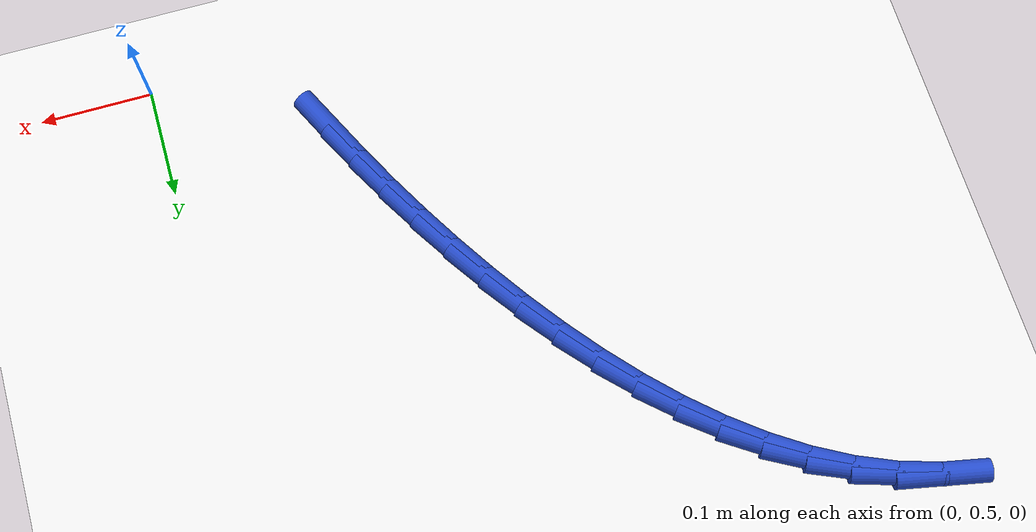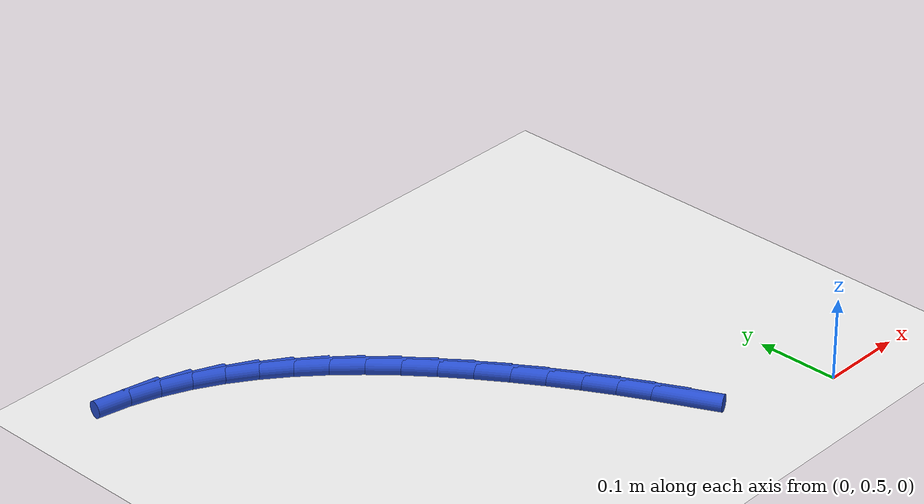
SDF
<sdf version="1.6">
 <world name="default">
  <model name="ground_plane">
   <static>1</static>
   <link name="link">
    <collision name="collision">
     <geometry><plane><normal>0 0 1</normal><size>100 100</size></plane></geometry>
     <surface><friction><ode><mu>100</mu><mu2>50</mu2></ode></friction></surface>
    </collision>
    <visual name="visual">
     <cast_shadows>0</cast_shadows>
     <geometry><plane><normal>0 0 1</normal><size>100 100</size></plane></geometry>
     <material>
      <script><uri>file://media/materials/scripts/gazebo.material</uri><name>Gazebo/WhiteGlow</name></script>
     </material>
    </visual>
   </link>
  </model>
  <model name="line">
   <link name="link_16">
    <pose>-0.14679261433450552 0.5823747199777852 0.01 0 1.57 -1.1213203472348447</pose>
    <collision name="collision">
     <geometry><cylinder><radius>0.01</radius><length>0.08</length></cylinder></geometry>
    </collision>
    <visual name="visual">
     <material>
      <script><name>Gazebo/Blue</name><uri>file://media/materials/scripts/gazebo.material</uri></script>
     </material>
     <geometry><cylinder><radius>0.01</radius><length>0.08</length></cylinder></geometry>
    </visual>
   </link>
   <link name="link_17">
    <pose>-0.1633418557994682 0.6166801408496633 0.01 0 1.57 -1.0940232627694966</pose>
    <collision name="collision">
     <geometry><cylinder><radius>0.01</radius><length>0.08</length></cylinder></geometry>
    </collision>
    <visual name="visual">
     <material>
      <script><name>Gazebo/Blue</name><uri>file://media/materials/scripts/gazebo.material</uri></script>
     </material>
     <geometry><cylinder><radius>0.01</radius><length>0.08</length></cylinder></geometry>
    </visual>
   </link>
   <link name="link_18">
    <pose>-0.18094752649211251 0.6507655618185675 0.01 0 1.57 -1.0660680508618456</pose>
    <collision name="collision">
     <geometry><cylinder><radius>0.01</radius><length>0.08</length></cylinder></geometry>
    </collision>
    <visual name="visual">
     <material>
      <script><name>Gazebo/Blue</name><uri>file://media/materials/scripts/gazebo.material</uri></script>
     </material>
     <geometry><cylinder><radius>0.01</radius><length>0.08</length></cylinder></geometry>
    </visual>
   </link>
   <link name="link_19">
    <pose>-0.19966048208232734 0.6846377488937464 0.01 0 1.57 -1.0375788745526946</pose>
    <collision name="collision">
     <geometry><cylinder><radius>0.01</radius><length>0.08</length></cylinder></geometry>
    </collision>
    <visual name="visual">
     <material>
      <script><name>Gazebo/Blue</name><uri>file://media/materials/scripts/gazebo.material</uri></script>
     </material>
     <geometry><cylinder><radius>0.01</radius><length>0.08</length></cylinder></geometry>
    </visual>
   </link>
   <link name="link_20">
    <pose>-0.21953157824000144 0.7183034680844478 0.01 0 1.57 -1.0085281038988079</pose>
    <collision name="collision">
     <geometry><cylinder><radius>0.01</radius><length>0.08</length></cylinder></geometry>
    </collision>
    <visual name="visual">
     <material>
      <script><name>Gazebo/Blue</name><uri>file://media/materials/scripts/gazebo.material</uri></script>
     </material>
     <geometry><cylinder><radius>0.01</radius><length>0.08</length></cylinder></geometry>
    </visual>
   </link>
   <link name="link_21">
    <pose>-0.2406095187670032 0.7517544728539155 0.01 0 1.57 -0.9769376198959406</pose>
    <collision name="collision">
     <geometry><cylinder><radius>0.01</radius><length>0.08</length></cylinder></geometry>
    </collision>
    <visual name="visual">
     <material>
      <script><name>Gazebo/Blue</name><uri>file://media/materials/scripts/gazebo.material</uri></script>
     </material>
     <geometry><cylinder><radius>0.01</radius><length>0.08</length></cylinder></geometry>
    </visual>
   </link>
   <link name="link_22">
    <pose>-0.26291586237252823 0.7847931384374061 0.01 0 1.57 -0.9410390834616802</pose>
    <collision name="collision">
     <geometry><cylinder><radius>0.01</radius><length>0.08</length></cylinder></geometry>
    </collision>
    <visual name="visual">
     <material>
      <script><name>Gazebo/Blue</name><uri>file://media/materials/scripts/gazebo.material</uri></script>
     </material>
     <geometry><cylinder><radius>0.01</radius><length>0.08</length></cylinder></geometry>
    </visual>
   </link>
   <link name="link_23">
    <pose>-0.2864535874889766 0.8170922144344327 0.01 0 1.57 -0.9002093344930429</pose>
    <collision name="collision">
     <geometry><cylinder><radius>0.01</radius><length>0.08</length></cylinder></geometry>
    </collision>
    <visual name="visual">
     <material>
      <script><name>Gazebo/Blue</name><uri>file://media/materials/scripts/gazebo.material</uri></script>
     </material>
     <geometry><cylinder><radius>0.01</radius><length>0.08</length></cylinder></geometry>
    </visual>
   </link>
   <link name="link_24">
    <pose>-0.31122531119113567 0.8483219294266147 0.01 0 1.57 -0.8537427876005834</pose>
    <collision name="collision">
     <geometry><cylinder><radius>0.01</radius><length>0.08</length></cylinder></geometry>
    </collision>
    <visual name="visual">
     <material>
      <script><name>Gazebo/Blue</name><uri>file://media/materials/scripts/gazebo.material</uri></script>
     </material>
     <geometry><cylinder><radius>0.01</radius><length>0.08</length></cylinder></geometry>
    </visual>
   </link>
   <link name="link_25">
    <pose>-0.337233650553793 0.8781525119955721 0.01 0 1.57 -0.8008281616777726</pose>
    <collision name="collision">
     <geometry><cylinder><radius>0.01</radius><length>0.08</length></cylinder></geometry>
    </collision>
    <visual name="visual">
     <material>
      <script><name>Gazebo/Blue</name><uri>file://media/materials/scripts/gazebo.material</uri></script>
     </material>
     <geometry><cylinder><radius>0.01</radius><length>0.08</length></cylinder></geometry>
    </visual>
   </link>
   <link name="link_26">
    <pose>-0.3644812226517359 0.9062541907229245 0.01 0 1.57 -0.7405665021716514</pose>
    <collision name="collision">
     <geometry><cylinder><radius>0.01</radius><length>0.08</length></cylinder></geometry>
    </collision>
    <visual name="visual">
     <material>
      <script><name>Gazebo/Blue</name><uri>file://media/materials/scripts/gazebo.material</uri></script>
     </material>
     <geometry><cylinder><radius>0.01</radius><length>0.08</length></cylinder></geometry>
    </visual>
   </link>
   <link name="link_27">
    <pose>-0.39297064455975206 0.9322971941902918 0.01 0 1.57 -0.6720167203840954</pose>
    <collision name="collision">
     <geometry><cylinder><radius>0.01</radius><length>0.08</length></cylinder></geometry>
    </collision>
    <visual name="visual">
     <material>
      <script><name>Gazebo/Blue</name><uri>file://media/materials/scripts/gazebo.material</uri></script>
     </material>
     <geometry><cylinder><radius>0.01</radius><length>0.08</length></cylinder></geometry>
    </visual>
   </link>
   <link name="link_28">
    <pose>-0.4227045333526288 0.9559517509792936 0.01 0 1.57 -0.5942857002543495</pose>
    <collision name="collision">
     <geometry><cylinder><radius>0.01</radius><length>0.08</length></cylinder></geometry>
    </collision>
    <visual name="visual">
     <material>
      <script><name>Gazebo/Blue</name><uri>file://media/materials/scripts/gazebo.material</uri></script>
     </material>
     <geometry><cylinder><radius>0.01</radius><length>0.08</length></cylinder></geometry>
    </visual>
   </link>
   <link name="link_29">
    <pose>-0.45368550610515335 0.9768880896715495 0.01 0 1.57 -0.5066815902784058</pose>
    <collision name="collision">
     <geometry><cylinder><radius>0.01</radius><length>0.08</length></cylinder></geometry>
    </collision>
    <visual name="visual">
     <material>
      <script><name>Gazebo/Blue</name><uri>file://media/materials/scripts/gazebo.material</uri></script>
     </material>
     <geometry><cylinder><radius>0.01</radius><length>0.08</length></cylinder></geometry>
    </visual>
   </link>
   <link name="link_30">
    <pose>-0.48591617989211366 0.9947764388486795 0.01 0 1.57 -0.408940308850533</pose>
    <collision name="collision">
     <geometry><cylinder><radius>0.01</radius><length>0.08</length></cylinder></geometry>
    </collision>
    <visual name="visual">
     <material>
      <script><name>Gazebo/Blue</name><uri>file://media/materials/scripts/gazebo.material</uri></script>
     </material>
     <geometry><cylinder><radius>0.01</radius><length>0.08</length></cylinder></geometry>
    </visual>
   </link>
   <link name="link_31">
    <pose>-0.5193991717882966 1.0092870270923027 0.01 0 1.57 -0.30239859048190465</pose>
    <collision name="collision">
     <geometry><cylinder><radius>0.01</radius><length>0.08</length></cylinder></geometry>
    </collision>
    <visual name="visual">
     <material>
      <script><name>Gazebo/Blue</name><uri>file://media/materials/scripts/gazebo.material</uri></script>
     </material>
     <geometry><cylinder><radius>0.01</radius><length>0.08</length></cylinder></geometry>
    </visual>
   </link>
   <link name="link_32">
    <pose>-0.554131824338189 1.020122444721563 0.01 0 1.57 -0.1991836640475621</pose>
    <collision name="collision">
     <geometry><cylinder><radius>0.01</radius><length>0.08</length></cylinder></geometry>
    </collision>
    <visual name="visual">
     <material>
      <script><name>Gazebo/Blue</name><uri>file://media/materials/scripts/gazebo.material</uri></script>
     </material>
     <geometry><cylinder><radius>0.01</radius><length>0.08</length></cylinder></geometry>
    </visual>
   </link>
  </model>
 </world>
</sdf>
